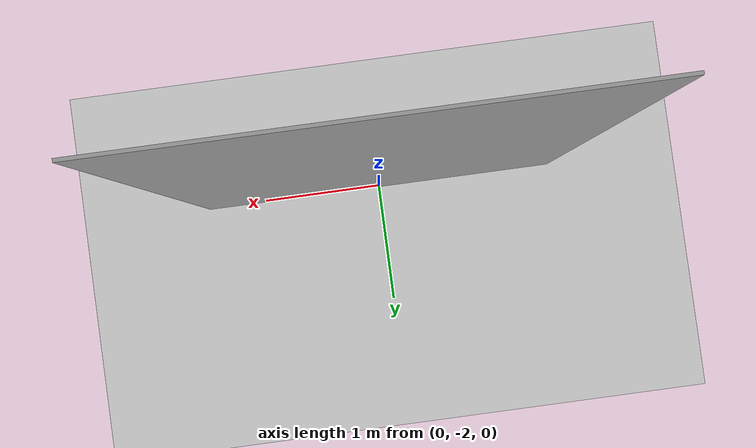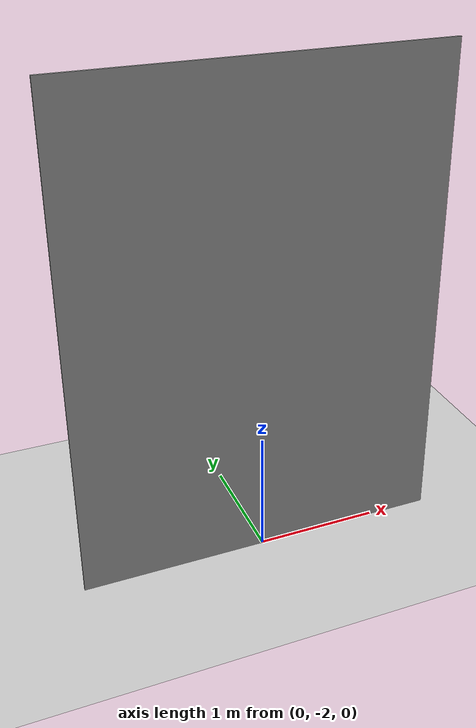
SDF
<?xml version="1.0" ?>
<sdf version='1.6'>
  <world name='default'>
    <light name='sun' type='directional'>
      <cast_shadows>1</cast_shadows>
      <pose frame=''>0 0 10 0 -0 0</pose>
      <diffuse>0.8 0.8 0.8 1</diffuse>
      <specular>0.2 0.2 0.2 1</specular>
      <attenuation>
        <range>1000</range>
        <constant>0.9</constant>
        <linear>0.01</linear>
        <quadratic>0.001</quadratic>
      </attenuation>
      <direction>-0.5 0.1 -0.9</direction>
    </light>
    <model name="wall_back">
        <static>1</static>
        <pose>0.0 -2 2 0.0 0 0.0</pose>
        <link name="link">
          <collision name="collision">
            <geometry>
              <box>
                <size>3 0.02 4</size>
              </box>
            </geometry>
          </collision>
          <visual name="visual">
            <material>
              <script>
                <name>Gazebo/Grey</name>
                <uri>file://media/materials/scripts/gazebo.material</uri>
              </script>
            </material>
            <geometry>
              <box>
                <size>3 0.02 4</size>
              </box>
            </geometry>
          </visual>
        </link>
    </model>
    <model name='ground_plane'>
      <static>1</static>
      <link name='link'>
        <collision name='collision'>
          <geometry>
            <plane>
              <normal>0 0 1</normal>
              <size>200 200</size>
            </plane>
          </geometry>
          <surface>
            <friction>
              <ode>
                <mu>100</mu>
                <mu2>50</mu2>
              </ode>
              <torsional>
                <ode/>
              </torsional>
            </friction>
            <contact>
              <ode/>
            </contact>
            <bounce/>
          </surface>
          <max_contacts>10</max_contacts>
        </collision>
        <visual name='visual'>
          <cast_shadows>0</cast_shadows>
          <geometry>
            <plane>
              <normal>0 0 1</normal>
              <size>200 200</size>
            </plane>
          </geometry>
          <material>
            <script>
              <uri>file://media/materials/scripts/gazebo.material</uri>
              <name>Gazebo/Grey</name>
            </script>
          </material>
        </visual>
        <self_collide>0</self_collide>
        <kinematic>0</kinematic>
      </link>
      <pose frame=''>0 0 0 0 -0 0</pose>
    </model>
    <gravity>0 0 -9.8</gravity>
    <magnetic_field>6e-06 2.3e-05 -4.2e-05</magnetic_field>
    <atmosphere type='adiabatic'/>
    <physics name='default_physics' default='0' type='ode'>
      <max_step_size>0.001</max_step_size>
      <real_time_factor>1</real_time_factor>
      <real_time_update_rate>1000</real_time_update_rate>
    </physics>
    <scene>
      <ambient>0.4 0.4 0.4 1</ambient>
      <background>0.7 0.7 0.7 1</background>
      <shadows>0</shadows>
    </scene>
    <spherical_coordinates>
      <surface_model>EARTH_WGS84</surface_model>
      <latitude_deg>0</latitude_deg>
      <longitude_deg>0</longitude_deg>
      <elevation>0</elevation>
      <heading_deg>0</heading_deg>
    </spherical_coordinates>
    <gui fullscreen='0'>
      <camera name='user_camera'>
        <pose frame=''>0 0 0.5 0 -0.23 1.57</pose>
        <view_controller>orbit</view_controller>
        <projection_type>perspective</projection_type>
      </camera>
    </gui>
  </world>
</sdf>
